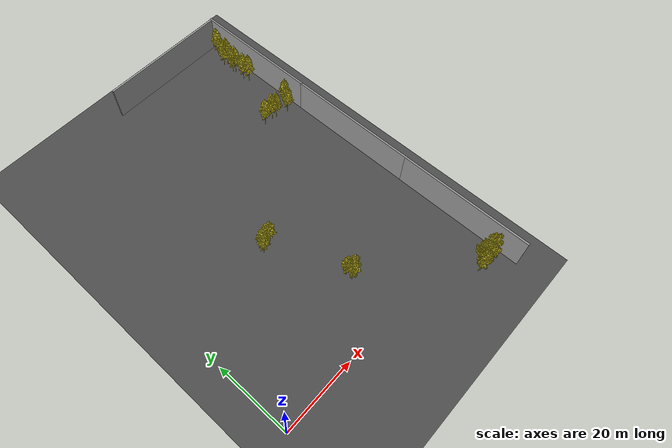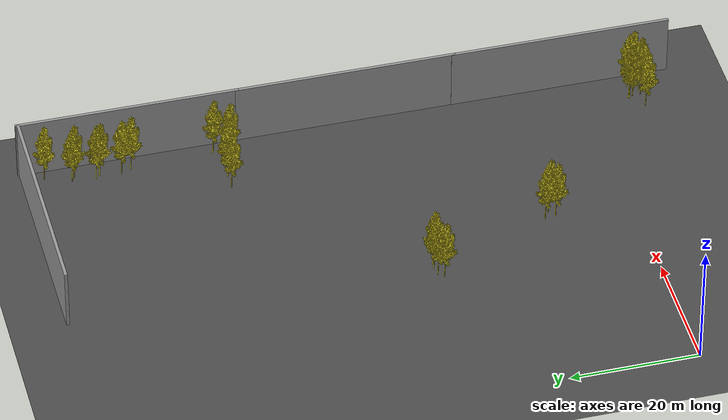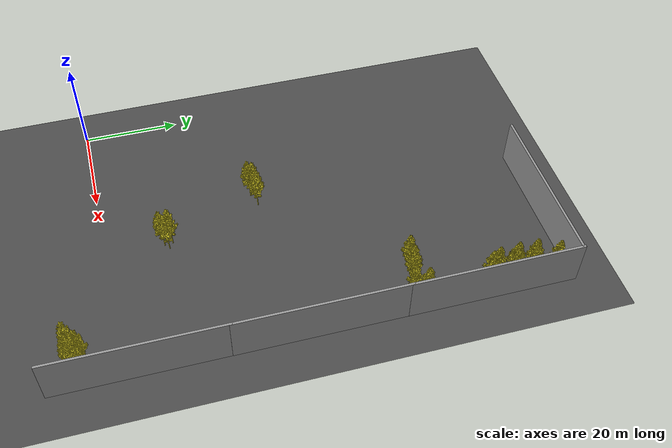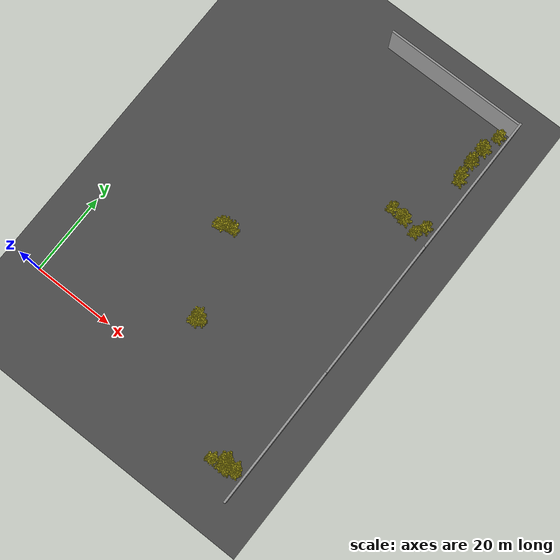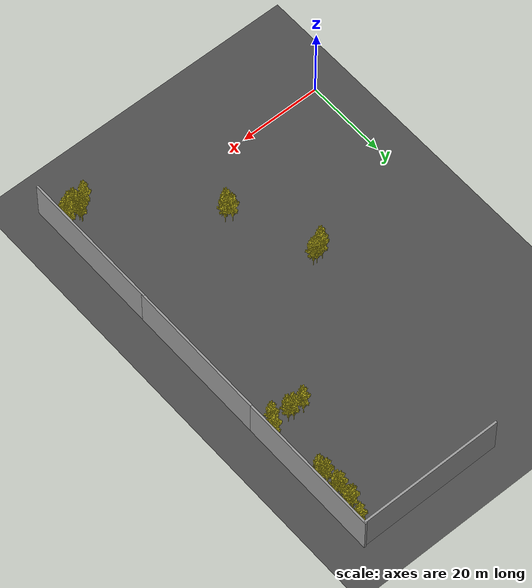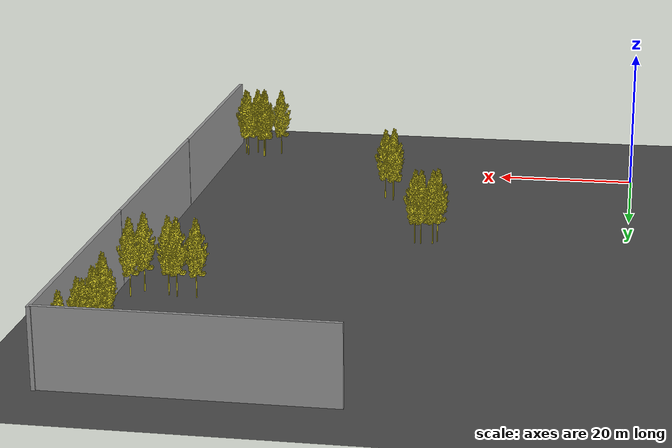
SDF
<sdf version="1.6">
 <world name="default">
  <model name="ground_plane">
   <static>1</static>
   <link name="link">
    <collision name="collision">
     <geometry><plane><normal>0 0 1</normal><size>40000 40000</size></plane></geometry>
     <surface>
      <contact><collide_bitmask>65535</collide_bitmask></contact>
      <friction><ode><mu>100</mu><mu2>50</mu2></ode></friction>
     </surface>
    </collision>
    <visual name="visual">
     <cast_shadows>0</cast_shadows>
     <geometry><plane><normal>0 0 1</normal><size>130 180</size></plane></geometry>
     <material>
      <script><uri>file://media/materials/scripts/gazebo.material</uri><name>Gazebo/Road</name></script>
     </material>
    </visual>
   </link>
  </model>
  <model name="wall1_clone_clone_clone_4">
   <link name="link">
    <enable_wind>1</enable_wind>
    <inertial>
     <mass>1</mass>
     <inertia><ixx>1</ixx><ixy>0</ixy><ixz>0</ixz><iyy>1</iyy><iyz>0</iyz><izz>1</izz></inertia>
    </inertial>
    <visual name="visual">
     <cast_shadows>0</cast_shadows>
     <geometry><box><size>35 0.5 10</size></box></geometry>
     <material>
      <script>
       <uri>model://grey_wall/materials/scripts</uri>
       <uri>model://grey_wall/materials/textures</uri>
       <name>vrc/grey_wall</name>
      </script>
      <shader type="pixel"><normal_map>__default__</normal_map></shader>
      <ambient>1 1 1 1</ambient>
      <diffuse>1 1 1 1</diffuse>
      <specular>0 0 0 1</specular>
      <emissive>0 0 0 1</emissive>
     </material>
    </visual>
    <collision name="collision">
     <geometry><box><size>35 0.5 10</size></box></geometry>
     <surface>
      <friction>
       <ode><mu>1</mu><mu2>1</mu2><fdir1>0 0 0</fdir1><slip1>0</slip1><slip2>0</slip2></ode>
       <torsional>
        <coefficient>1</coefficient>
        <patch_radius>0</patch_radius>
        <surface_radius>0</surface_radius>
        <use_patch_radius>1</use_patch_radius>
        <ode><slip>0</slip></ode>
       </torsional>
      </friction>
      <bounce><restitution_coefficient>0</restitution_coefficient><threshold>1e+06</threshold></bounce>
      <contact>
       <collide_without_contact>0</collide_without_contact>
       <collide_without_contact_bitmask>1</collide_without_contact_bitmask>
       <collide_bitmask>1</collide_bitmask>
       <ode>
        <soft_cfm>0</soft_cfm>
        <soft_erp>0.2</soft_erp>
        <kp>1e+13</kp>
        <kd>1</kd>
        <max_vel>0.01</max_vel>
        <min_depth>0</min_depth>
       </ode>
       <bullet>
        <split_impulse>1</split_impulse>
        <split_impulse_penetration_threshold>-0.01</split_impulse_penetration_threshold>
        <soft_cfm>0</soft_cfm>
        <soft_erp>0.2</soft_erp>
        <kp>1e+13</kp>
        <kd>1</kd>
       </bullet>
      </contact>
     </surface>
    </collision>
   </link>
   <static>1</static>
   <pose>47.1545 89.4112 5 0 -0 0</pose>
  </model>
  <model name="wall1_clone_clone_0_clone_5">
   <link name="link">
    <enable_wind>1</enable_wind>
    <inertial>
     <mass>1</mass>
     <inertia><ixx>1</ixx><ixy>0</ixy><ixz>0</ixz><iyy>1</iyy><iyz>0</iyz><izz>1</izz></inertia>
    </inertial>
    <visual name="visual">
     <cast_shadows>0</cast_shadows>
     <geometry><box><size>35 0.5 10</size></box></geometry>
     <material>
      <script>
       <uri>model://grey_wall/materials/scripts</uri>
       <uri>model://grey_wall/materials/textures</uri>
       <name>vrc/grey_wall</name>
      </script>
      <shader type="pixel"><normal_map>__default__</normal_map></shader>
      <ambient>1 1 1 1</ambient>
      <diffuse>1 1 1 1</diffuse>
      <specular>0 0 0 1</specular>
      <emissive>0 0 0 1</emissive>
     </material>
    </visual>
    <collision name="collision">
     <geometry><box><size>35 0.5 10</size></box></geometry>
     <surface>
      <friction>
       <ode><mu>1</mu><mu2>1</mu2><fdir1>0 0 0</fdir1><slip1>0</slip1><slip2>0</slip2></ode>
       <torsional>
        <coefficient>1</coefficient>
        <patch_radius>0</patch_radius>
        <surface_radius>0</surface_radius>
        <use_patch_radius>1</use_patch_radius>
        <ode><slip>0</slip></ode>
       </torsional>
      </friction>
      <bounce><restitution_coefficient>0</restitution_coefficient><threshold>1e+06</threshold></bounce>
      <contact>
       <collide_without_contact>0</collide_without_contact>
       <collide_without_contact_bitmask>1</collide_without_contact_bitmask>
       <collide_bitmask>1</collide_bitmask>
       <ode>
        <soft_cfm>0</soft_cfm>
        <soft_erp>0.2</soft_erp>
        <kp>1e+13</kp>
        <kd>1</kd>
        <max_vel>0.01</max_vel>
        <min_depth>0</min_depth>
       </ode>
       <bullet>
        <split_impulse>1</split_impulse>
        <split_impulse_penetration_threshold>-0.01</split_impulse_penetration_threshold>
        <soft_cfm>0</soft_cfm>
        <soft_erp>0.2</soft_erp>
        <kp>1e+13</kp>
        <kd>1</kd>
       </bullet>
      </contact>
     </surface>
    </collision>
   </link>
   <static>1</static>
   <pose>64.6101 72.3736 5 0 0 -1.57191</pose>
  </model>
  <model name="wall1_clone_clone_0_clone_5_clone">
   <link name="link">
    <enable_wind>1</enable_wind>
    <inertial>
     <mass>1</mass>
     <inertia><ixx>1</ixx><ixy>0</ixy><ixz>0</ixz><iyy>1</iyy><iyz>0</iyz><izz>1</izz></inertia>
    </inertial>
    <visual name="visual">
     <cast_shadows>0</cast_shadows>
     <geometry><box><size>35 0.5 10</size></box></geometry>
     <material>
      <script>
       <uri>model://grey_wall/materials/scripts</uri>
       <uri>model://grey_wall/materials/textures</uri>
       <name>vrc/grey_wall</name>
      </script>
      <shader type="pixel"><normal_map>__default__</normal_map></shader>
      <ambient>1 1 1 1</ambient>
      <diffuse>1 1 1 1</diffuse>
      <specular>0 0 0 1</specular>
      <emissive>0 0 0 1</emissive>
     </material>
    </visual>
    <collision name="collision">
     <geometry><box><size>35 0.5 10</size></box></geometry>
     <surface>
      <friction>
       <ode><mu>1</mu><mu2>1</mu2><fdir1>0 0 0</fdir1><slip1>0</slip1><slip2>0</slip2></ode>
       <torsional>
        <coefficient>1</coefficient>
        <patch_radius>0</patch_radius>
        <surface_radius>0</surface_radius>
        <use_patch_radius>1</use_patch_radius>
        <ode><slip>0</slip></ode>
       </torsional>
      </friction>
      <bounce><restitution_coefficient>0</restitution_coefficient><threshold>1e+06</threshold></bounce>
      <contact>
       <collide_without_contact>0</collide_without_contact>
       <collide_without_contact_bitmask>1</collide_without_contact_bitmask>
       <collide_bitmask>1</collide_bitmask>
       <ode>
        <soft_cfm>0</soft_cfm>
        <soft_erp>0.2</soft_erp>
        <kp>1e+13</kp>
        <kd>1</kd>
        <max_vel>0.01</max_vel>
        <min_depth>0</min_depth>
       </ode>
       <bullet>
        <split_impulse>1</split_impulse>
        <split_impulse_penetration_threshold>-0.01</split_impulse_penetration_threshold>
        <soft_cfm>0</soft_cfm>
        <soft_erp>0.2</soft_erp>
        <kp>1e+13</kp>
        <kd>1</kd>
       </bullet>
      </contact>
     </surface>
    </collision>
   </link>
   <static>1</static>
   <pose>64.5471 37.9291 5 0 0 -1.57191</pose>
  </model>
  <model name="wall1_clone_clone_0_clone_5_clone_0">
   <link name="link">
    <enable_wind>1</enable_wind>
    <inertial>
     <mass>1</mass>
     <inertia><ixx>1</ixx><ixy>0</ixy><ixz>0</ixz><iyy>1</iyy><iyz>0</iyz><izz>1</izz></inertia>
    </inertial>
    <visual name="visual">
     <cast_shadows>0</cast_shadows>
     <geometry><box><size>35 0.5 10</size></box></geometry>
     <material>
      <script>
       <uri>model://grey_wall/materials/scripts</uri>
       <uri>model://grey_wall/materials/textures</uri>
       <name>vrc/grey_wall</name>
      </script>
      <shader type="pixel"><normal_map>__default__</normal_map></shader>
      <ambient>1 1 1 1</ambient>
      <diffuse>1 1 1 1</diffuse>
      <specular>0 0 0 1</specular>
      <emissive>0 0 0 1</emissive>
     </material>
    </visual>
    <collision name="collision">
     <geometry><box><size>35 0.5 10</size></box></geometry>
     <surface>
      <friction>
       <ode><mu>1</mu><mu2>1</mu2><fdir1>0 0 0</fdir1><slip1>0</slip1><slip2>0</slip2></ode>
       <torsional>
        <coefficient>1</coefficient>
        <patch_radius>0</patch_radius>
        <surface_radius>0</surface_radius>
        <use_patch_radius>1</use_patch_radius>
        <ode><slip>0</slip></ode>
       </torsional>
      </friction>
      <bounce><restitution_coefficient>0</restitution_coefficient><threshold>1e+06</threshold></bounce>
      <contact>
       <collide_without_contact>0</collide_without_contact>
       <collide_without_contact_bitmask>1</collide_without_contact_bitmask>
       <collide_bitmask>1</collide_bitmask>
       <ode>
        <soft_cfm>0</soft_cfm>
        <soft_erp>0.2</soft_erp>
        <kp>1e+13</kp>
        <kd>1</kd>
        <max_vel>0.01</max_vel>
        <min_depth>0</min_depth>
       </ode>
       <bullet>
        <split_impulse>1</split_impulse>
        <split_impulse_penetration_threshold>-0.01</split_impulse_penetration_threshold>
        <soft_cfm>0</soft_cfm>
        <soft_erp>0.2</soft_erp>
        <kp>1e+13</kp>
        <kd>1</kd>
       </bullet>
      </contact>
     </surface>
    </collision>
   </link>
   <static>1</static>
   <pose>64.48 3.53761 5 0 0 -1.57191</pose>
  </model>
  <model name="tree0_clone_clone_clone_1_clone">
   <link name="tree_base">
    <inertial>
     <mass>50</mass>
     <inertia>
      <ixx>6.71748</ixx>
      <ixy>2.148e-05</ixy>
      <ixz>-2.4e-07</ixz>
      <iyy>6.71748</iyy>
      <iyz>-0.171807</iyz>
      <izz>6.71748</izz>
     </inertia>
    </inertial>
    <collision name="tree_base_fixed_joint_lump__collision_collision">
     <geometry>
      <mesh>
       <scale>0.4 0.4 0.6</scale>
       <uri>/home/ana/catkin_ws/src/frontier_exploration_3d/models/tree/meshes/tree_25k_mesh.dae</uri>
      </mesh>
     </geometry>
    </collision>
    <visual name="tree_base_visual">
     <geometry>
      <mesh>
       <scale>0.4 0.4 0.6</scale>
       <uri>/home/ana/catkin_ws/src/frontier_exploration_3d/models/tree/meshes/tree_25k_mesh.dae</uri>
      </mesh>
     </geometry>
     <material>
      <script><name>Gazebo/Yellow</name><uri>file://media/materials/scripts/gazebo.material</uri></script>
     </material>
    </visual>
   </link>
   <joint name="joint_tree_base" type="fixed"><child>tree_base</child><parent>world</parent></joint>
   <static>1</static>
   <pose>61.6795 76.3741 0 0 -0 0</pose>
  </model>
  <model name="tree0_clone_clone_clone_1_clone_0">
   <link name="tree_base">
    <inertial>
     <mass>50</mass>
     <inertia>
      <ixx>6.71748</ixx>
      <ixy>2.148e-05</ixy>
      <ixz>-2.4e-07</ixz>
      <iyy>6.71748</iyy>
      <iyz>-0.171807</iyz>
      <izz>6.71748</izz>
     </inertia>
    </inertial>
    <collision name="tree_base_fixed_joint_lump__collision_collision">
     <geometry>
      <mesh>
       <scale>0.4 0.4 0.6</scale>
       <uri>/home/ana/catkin_ws/src/frontier_exploration_3d/models/tree/meshes/tree_25k_mesh.dae</uri>
      </mesh>
     </geometry>
    </collision>
    <visual name="tree_base_visual">
     <geometry>
      <mesh>
       <scale>0.4 0.4 0.6</scale>
       <uri>/home/ana/catkin_ws/src/frontier_exploration_3d/models/tree/meshes/tree_25k_mesh.dae</uri>
      </mesh>
     </geometry>
     <material>
      <script><name>Gazebo/Yellow</name><uri>file://media/materials/scripts/gazebo.material</uri></script>
     </material>
    </visual>
   </link>
   <joint name="joint_tree_base" type="fixed"><child>tree_base</child><parent>world</parent></joint>
   <static>1</static>
   <pose>61.0806 85.71 0 0 -0 0</pose>
  </model>
  <model name="tree0_clone_clone_clone_1_clone_1">
   <link name="tree_base">
    <inertial>
     <mass>50</mass>
     <inertia>
      <ixx>6.71748</ixx>
      <ixy>2.148e-05</ixy>
      <ixz>-2.4e-07</ixz>
      <iyy>6.71748</iyy>
      <iyz>-0.171807</iyz>
      <izz>6.71748</izz>
     </inertia>
    </inertial>
    <collision name="tree_base_fixed_joint_lump__collision_collision">
     <geometry>
      <mesh>
       <scale>0.4 0.4 0.6</scale>
       <uri>/home/ana/catkin_ws/src/frontier_exploration_3d/models/tree/meshes/tree_25k_mesh.dae</uri>
      </mesh>
     </geometry>
    </collision>
    <visual name="tree_base_visual">
     <geometry>
      <mesh>
       <scale>0.4 0.4 0.6</scale>
       <uri>/home/ana/catkin_ws/src/frontier_exploration_3d/models/tree/meshes/tree_25k_mesh.dae</uri>
      </mesh>
     </geometry>
     <material>
      <script><name>Gazebo/Yellow</name><uri>file://media/materials/scripts/gazebo.material</uri></script>
     </material>
    </visual>
   </link>
   <joint name="joint_tree_base" type="fixed"><child>tree_base</child><parent>world</parent></joint>
   <static>1</static>
   <pose>61.3538 81.3269 0 0 -0 0</pose>
  </model>
  <model name="tree0_clone_clone_clone_1_clone_2">
   <link name="tree_base">
    <inertial>
     <mass>50</mass>
     <inertia>
      <ixx>6.71748</ixx>
      <ixy>2.148e-05</ixy>
      <ixz>-2.4e-07</ixz>
      <iyy>6.71748</iyy>
      <iyz>-0.171807</iyz>
      <izz>6.71748</izz>
     </inertia>
    </inertial>
    <collision name="tree_base_fixed_joint_lump__collision_collision">
     <geometry>
      <mesh>
       <scale>0.4 0.4 0.6</scale>
       <uri>/home/ana/catkin_ws/src/frontier_exploration_3d/models/tree/meshes/tree_25k_mesh.dae</uri>
      </mesh>
     </geometry>
    </collision>
    <visual name="tree_base_visual">
     <geometry>
      <mesh>
       <scale>0.4 0.4 0.6</scale>
       <uri>/home/ana/catkin_ws/src/frontier_exploration_3d/models/tree/meshes/tree_25k_mesh.dae</uri>
      </mesh>
     </geometry>
     <material>
      <script><name>Gazebo/Yellow</name><uri>file://media/materials/scripts/gazebo.material</uri></script>
     </material>
    </visual>
   </link>
   <joint name="joint_tree_base" type="fixed"><child>tree_base</child><parent>world</parent></joint>
   <static>1</static>
   <pose>61.0046 61.0021 0 0 -0 0</pose>
  </model>
  <model name="tree0_clone_clone_clone_1_clone_3">
   <link name="tree_base">
    <inertial>
     <mass>50</mass>
     <inertia>
      <ixx>6.71748</ixx>
      <ixy>2.148e-05</ixy>
      <ixz>-2.4e-07</ixz>
      <iyy>6.71748</iyy>
      <iyz>-0.171807</iyz>
      <izz>6.71748</izz>
     </inertia>
    </inertial>
    <collision name="tree_base_fixed_joint_lump__collision_collision">
     <geometry>
      <mesh>
       <scale>0.4 0.4 0.6</scale>
       <uri>/home/ana/catkin_ws/src/frontier_exploration_3d/models/tree/meshes/tree_25k_mesh.dae</uri>
      </mesh>
     </geometry>
    </collision>
    <visual name="tree_base_visual">
     <geometry>
      <mesh>
       <scale>0.4 0.4 0.6</scale>
       <uri>/home/ana/catkin_ws/src/frontier_exploration_3d/models/tree/meshes/tree_25k_mesh.dae</uri>
      </mesh>
     </geometry>
     <material>
      <script><name>Gazebo/Yellow</name><uri>file://media/materials/scripts/gazebo.material</uri></script>
     </material>
    </visual>
   </link>
   <joint name="joint_tree_base" type="fixed"><child>tree_base</child><parent>world</parent></joint>
   <static>1</static>
   <pose>57.5773 61.8933 0 0 -0 0</pose>
  </model>
  <model name="tree0_clone_clone_clone_1_clone_4">
   <link name="tree_base">
    <inertial>
     <mass>50</mass>
     <inertia>
      <ixx>6.71748</ixx>
      <ixy>2.148e-05</ixy>
      <ixz>-2.4e-07</ixz>
      <iyy>6.71748</iyy>
      <iyz>-0.171807</iyz>
      <izz>6.71748</izz>
     </inertia>
    </inertial>
    <collision name="tree_base_fixed_joint_lump__collision_collision">
     <geometry>
      <mesh>
       <scale>0.4 0.4 0.6</scale>
       <uri>/home/ana/catkin_ws/src/frontier_exploration_3d/models/tree/meshes/tree_25k_mesh.dae</uri>
      </mesh>
     </geometry>
    </collision>
    <visual name="tree_base_visual">
     <geometry>
      <mesh>
       <scale>0.4 0.4 0.6</scale>
       <uri>/home/ana/catkin_ws/src/frontier_exploration_3d/models/tree/meshes/tree_25k_mesh.dae</uri>
      </mesh>
     </geometry>
     <material>
      <script><name>Gazebo/Yellow</name><uri>file://media/materials/scripts/gazebo.material</uri></script>
     </material>
    </visual>
   </link>
   <joint name="joint_tree_base" type="fixed"><child>tree_base</child><parent>world</parent></joint>
   <static>1</static>
   <pose>53.8554 62.3117 0 0 -0 0</pose>
  </model>
  <model name="tree0_clone_clone_clone_1_clone_4_clone_0">
   <link name="tree_base">
    <inertial>
     <mass>50</mass>
     <inertia>
      <ixx>6.71748</ixx>
      <ixy>2.148e-05</ixy>
      <ixz>-2.4e-07</ixz>
      <iyy>6.71748</iyy>
      <iyz>-0.171807</iyz>
      <izz>6.71748</izz>
     </inertia>
    </inertial>
    <collision name="tree_base_fixed_joint_lump__collision_collision">
     <geometry>
      <mesh>
       <scale>0.4 0.4 0.6</scale>
       <uri>/home/ana/catkin_ws/src/frontier_exploration_3d/models/tree/meshes/tree_25k_mesh.dae</uri>
      </mesh>
     </geometry>
    </collision>
    <visual name="tree_base_visual">
     <geometry>
      <mesh>
       <scale>0.4 0.4 0.6</scale>
       <uri>/home/ana/catkin_ws/src/frontier_exploration_3d/models/tree/meshes/tree_25k_mesh.dae</uri>
      </mesh>
     </geometry>
     <material>
      <script><name>Gazebo/Yellow</name><uri>file://media/materials/scripts/gazebo.material</uri></script>
     </material>
    </visual>
   </link>
   <joint name="joint_tree_base" type="fixed"><child>tree_base</child><parent>world</parent></joint>
   <static>1</static>
   <pose>59.3499 -4.55438 0 0 -0 0</pose>
  </model>
  <model name="tree0_clone_clone_clone_1_clone_4_clone_1">
   <link name="tree_base">
    <inertial>
     <mass>50</mass>
     <inertia>
      <ixx>6.71748</ixx>
      <ixy>2.148e-05</ixy>
      <ixz>-2.4e-07</ixz>
      <iyy>6.71748</iyy>
      <iyz>-0.171807</iyz>
      <izz>6.71748</izz>
     </inertia>
    </inertial>
    <collision name="tree_base_fixed_joint_lump__collision_collision">
     <geometry>
      <mesh>
       <scale>0.4 0.4 0.6</scale>
       <uri>/home/ana/catkin_ws/src/frontier_exploration_3d/models/tree/meshes/tree_25k_mesh.dae</uri>
      </mesh>
     </geometry>
    </collision>
    <visual name="tree_base_visual">
     <geometry>
      <mesh>
       <scale>0.4 0.4 0.6</scale>
       <uri>/home/ana/catkin_ws/src/frontier_exploration_3d/models/tree/meshes/tree_25k_mesh.dae</uri>
      </mesh>
     </geometry>
     <material>
      <script><name>Gazebo/Yellow</name><uri>file://media/materials/scripts/gazebo.material</uri></script>
     </material>
    </visual>
   </link>
   <joint name="joint_tree_base" type="fixed"><child>tree_base</child><parent>world</parent></joint>
   <static>1</static>
   <pose>56.6016 -4.57491 0 0 -0 0</pose>
  </model>
  <model name="tree0_clone_clone_clone_1_clone_4_clone_2">
   <link name="tree_base">
    <inertial>
     <mass>50</mass>
     <inertia>
      <ixx>6.71748</ixx>
      <ixy>2.148e-05</ixy>
      <ixz>-2.4e-07</ixz>
      <iyy>6.71748</iyy>
      <iyz>-0.171807</iyz>
      <izz>6.71748</izz>
     </inertia>
    </inertial>
    <collision name="tree_base_fixed_joint_lump__collision_collision">
     <geometry>
      <mesh>
       <scale>0.4 0.4 0.6</scale>
       <uri>/home/ana/catkin_ws/src/frontier_exploration_3d/models/tree/meshes/tree_25k_mesh.dae</uri>
      </mesh>
     </geometry>
    </collision>
    <visual name="tree_base_visual">
     <geometry>
      <mesh>
       <scale>0.4 0.4 0.6</scale>
       <uri>/home/ana/catkin_ws/src/frontier_exploration_3d/models/tree/meshes/tree_25k_mesh.dae</uri>
      </mesh>
     </geometry>
     <material>
      <script><name>Gazebo/Yellow</name><uri>file://media/materials/scripts/gazebo.material</uri></script>
     </material>
    </visual>
   </link>
   <joint name="joint_tree_base" type="fixed"><child>tree_base</child><parent>world</parent></joint>
   <static>1</static>
   <pose>58.9183 -2.67417 0 0 -0 0</pose>
  </model>
  <model name="tree0_clone_clone_clone_1_clone_4_clone_3">
   <link name="tree_base">
    <inertial>
     <mass>50</mass>
     <inertia>
      <ixx>6.71748</ixx>
      <ixy>2.148e-05</ixy>
      <ixz>-2.4e-07</ixz>
      <iyy>6.71748</iyy>
      <iyz>-0.171807</iyz>
      <izz>6.71748</izz>
     </inertia>
    </inertial>
    <collision name="tree_base_fixed_joint_lump__collision_collision">
     <geometry>
      <mesh>
       <scale>0.4 0.4 0.6</scale>
       <uri>/home/ana/catkin_ws/src/frontier_exploration_3d/models/tree/meshes/tree_25k_mesh.dae</uri>
      </mesh>
     </geometry>
    </collision>
    <visual name="tree_base_visual">
     <geometry>
      <mesh>
       <scale>0.4 0.4 0.6</scale>
       <uri>/home/ana/catkin_ws/src/frontier_exploration_3d/models/tree/meshes/tree_25k_mesh.dae</uri>
      </mesh>
     </geometry>
     <material>
      <script><name>Gazebo/Yellow</name><uri>file://media/materials/scripts/gazebo.material</uri></script>
     </material>
    </visual>
   </link>
   <joint name="joint_tree_base" type="fixed"><child>tree_base</child><parent>world</parent></joint>
   <static>1</static>
   <pose>36.314 16.8724 0 0 -0 0</pose>
  </model>
  <model name="tree0_clone_clone_clone_1_clone_4_clone_4">
   <link name="tree_base">
    <inertial>
     <mass>50</mass>
     <inertia>
      <ixx>6.71748</ixx>
      <ixy>2.148e-05</ixy>
      <ixz>-2.4e-07</ixz>
      <iyy>6.71748</iyy>
      <iyz>-0.171807</iyz>
      <izz>6.71748</izz>
     </inertia>
    </inertial>
    <collision name="tree_base_fixed_joint_lump__collision_collision">
     <geometry>
      <mesh>
       <scale>0.4 0.4 0.6</scale>
       <uri>/home/ana/catkin_ws/src/frontier_exploration_3d/models/tree/meshes/tree_25k_mesh.dae</uri>
      </mesh>
     </geometry>
    </collision>
    <visual name="tree_base_visual">
     <geometry>
      <mesh>
       <scale>0.4 0.4 0.6</scale>
       <uri>/home/ana/catkin_ws/src/frontier_exploration_3d/models/tree/meshes/tree_25k_mesh.dae</uri>
      </mesh>
     </geometry>
     <material>
      <script><name>Gazebo/Yellow</name><uri>file://media/materials/scripts/gazebo.material</uri></script>
     </material>
    </visual>
   </link>
   <joint name="joint_tree_base" type="fixed"><child>tree_base</child><parent>world</parent></joint>
   <static>1</static>
   <pose>29.2571 36.919 0 0 -0 0</pose>
  </model>
  <model name="tree0_clone_clone_clone_1_clone_4_clone_3_clone">
   <link name="tree_base">
    <inertial>
     <mass>50</mass>
     <inertia>
      <ixx>6.71748</ixx>
      <ixy>2.148e-05</ixy>
      <ixz>-2.4e-07</ixz>
      <iyy>6.71748</iyy>
      <iyz>-0.171807</iyz>
      <izz>6.71748</izz>
     </inertia>
    </inertial>
    <collision name="tree_base_fixed_joint_lump__collision_collision">
     <geometry>
      <mesh>
       <scale>0.4 0.4 0.6</scale>
       <uri>/home/ana/catkin_ws/src/frontier_exploration_3d/models/tree/meshes/tree_25k_mesh.dae</uri>
      </mesh>
     </geometry>
    </collision>
    <visual name="tree_base_visual">
     <geometry>
      <mesh>
       <scale>0.4 0.4 0.6</scale>
       <uri>/home/ana/catkin_ws/src/frontier_exploration_3d/models/tree/meshes/tree_25k_mesh.dae</uri>
      </mesh>
     </geometry>
     <material>
      <script><name>Gazebo/Yellow</name><uri>file://media/materials/scripts/gazebo.material</uri></script>
     </material>
    </visual>
   </link>
   <joint name="joint_tree_base" type="fixed"><child>tree_base</child><parent>world</parent></joint>
   <static>1</static>
   <pose>35.0095 17.7314 0 0 -0 0</pose>
  </model>
  <model name="tree0_clone_clone_clone_1_clone_4_clone_3_clone_0">
   <link name="tree_base">
    <inertial>
     <mass>50</mass>
     <inertia>
      <ixx>6.71748</ixx>
      <ixy>2.148e-05</ixy>
      <ixz>-2.4e-07</ixz>
      <iyy>6.71748</iyy>
      <iyz>-0.171807</iyz>
      <izz>6.71748</izz>
     </inertia>
    </inertial>
    <collision name="tree_base_fixed_joint_lump__collision_collision">
     <geometry>
      <mesh>
       <scale>0.4 0.4 0.6</scale>
       <uri>/home/ana/catkin_ws/src/frontier_exploration_3d/models/tree/meshes/tree_25k_mesh.dae</uri>
      </mesh>
     </geometry>
    </collision>
    <visual name="tree_base_visual">
     <geometry>
      <mesh>
       <scale>0.4 0.4 0.6</scale>
       <uri>/home/ana/catkin_ws/src/frontier_exploration_3d/models/tree/meshes/tree_25k_mesh.dae</uri>
      </mesh>
     </geometry>
     <material>
      <script><name>Gazebo/Yellow</name><uri>file://media/materials/scripts/gazebo.material</uri></script>
     </material>
    </visual>
   </link>
   <joint name="joint_tree_base" type="fixed"><child>tree_base</child><parent>world</parent></joint>
   <static>1</static>
   <pose>35.1617 16.0304 0 0 -0 0</pose>
  </model>
  <model name="tree0_clone_clone_clone_1_clone_4_clone_3_clone_1">
   <link name="tree_base">
    <inertial>
     <mass>50</mass>
     <inertia>
      <ixx>6.71748</ixx>
      <ixy>2.148e-05</ixy>
      <ixz>-2.4e-07</ixz>
      <iyy>6.71748</iyy>
      <iyz>-0.171807</iyz>
      <izz>6.71748</izz>
     </inertia>
    </inertial>
    <collision name="tree_base_fixed_joint_lump__collision_collision">
     <geometry>
      <mesh>
       <scale>0.4 0.4 0.6</scale>
       <uri>/home/ana/catkin_ws/src/frontier_exploration_3d/models/tree/meshes/tree_25k_mesh.dae</uri>
      </mesh>
     </geometry>
    </collision>
    <visual name="tree_base_visual">
     <geometry>
      <mesh>
       <scale>0.4 0.4 0.6</scale>
       <uri>/home/ana/catkin_ws/src/frontier_exploration_3d/models/tree/meshes/tree_25k_mesh.dae</uri>
      </mesh>
     </geometry>
     <material>
      <script><name>Gazebo/Yellow</name><uri>file://media/materials/scripts/gazebo.material</uri></script>
     </material>
    </visual>
   </link>
   <joint name="joint_tree_base" type="fixed"><child>tree_base</child><parent>world</parent></joint>
   <static>1</static>
   <pose>28.3903 37.0069 0 0 -0 0</pose>
  </model>
  <model name="tree0_clone_clone_clone_1_clone_4_clone_3_clone_2">
   <link name="tree_base">
    <inertial>
     <mass>50</mass>
     <inertia>
      <ixx>6.71748</ixx>
      <ixy>2.148e-05</ixy>
      <ixz>-2.4e-07</ixz>
      <iyy>6.71748</iyy>
      <iyz>-0.171807</iyz>
      <izz>6.71748</izz>
     </inertia>
    </inertial>
    <collision name="tree_base_fixed_joint_lump__collision_collision">
     <geometry>
      <mesh>
       <scale>0.4 0.4 0.6</scale>
       <uri>/home/ana/catkin_ws/src/frontier_exploration_3d/models/tree/meshes/tree_25k_mesh.dae</uri>
      </mesh>
     </geometry>
    </collision>
    <visual name="tree_base_visual">
     <geometry>
      <mesh>
       <scale>0.4 0.4 0.6</scale>
       <uri>/home/ana/catkin_ws/src/frontier_exploration_3d/models/tree/meshes/tree_25k_mesh.dae</uri>
      </mesh>
     </geometry>
     <material>
      <script><name>Gazebo/Yellow</name><uri>file://media/materials/scripts/gazebo.material</uri></script>
     </material>
    </visual>
   </link>
   <joint name="joint_tree_base" type="fixed"><child>tree_base</child><parent>world</parent></joint>
   <static>1</static>
   <pose>26.772 36.8202 0 0 -0 0</pose>
  </model>
  <model name="tree0_clone_clone_clone_1_clone_4_clone_3_clone_3">
   <link name="tree_base">
    <inertial>
     <mass>50</mass>
     <inertia>
      <ixx>6.71748</ixx>
      <ixy>2.148e-05</ixy>
      <ixz>-2.4e-07</ixz>
      <iyy>6.71748</iyy>
      <iyz>-0.171807</iyz>
      <izz>6.71748</izz>
     </inertia>
    </inertial>
    <collision name="tree_base_fixed_joint_lump__collision_collision">
     <geometry>
      <mesh>
       <scale>0.4 0.4 0.6</scale>
       <uri>/home/ana/catkin_ws/src/frontier_exploration_3d/models/tree/meshes/tree_25k_mesh.dae</uri>
      </mesh>
     </geometry>
    </collision>
    <visual name="tree_base_visual">
     <geometry>
      <mesh>
       <scale>0.4 0.4 0.6</scale>
       <uri>/home/ana/catkin_ws/src/frontier_exploration_3d/models/tree/meshes/tree_25k_mesh.dae</uri>
      </mesh>
     </geometry>
     <material>
      <script><name>Gazebo/Yellow</name><uri>file://media/materials/scripts/gazebo.material</uri></script>
     </material>
    </visual>
   </link>
   <joint name="joint_tree_base" type="fixed"><child>tree_base</child><parent>world</parent></joint>
   <static>1</static>
   <pose>26.2164 35.9188 0 0 -0 0</pose>
  </model>
  <model name="tree0_clone_clone_clone_1_clone_4_clone_3_clone_5">
   <link name="tree_base">
    <inertial>
     <mass>50</mass>
     <inertia>
      <ixx>6.71748</ixx>
      <ixy>2.148e-05</ixy>
      <ixz>-2.4e-07</ixz>
      <iyy>6.71748</iyy>
      <iyz>-0.171807</iyz>
      <izz>6.71748</izz>
     </inertia>
    </inertial>
    <collision name="tree_base_fixed_joint_lump__collision_collision">
     <geometry>
      <mesh>
       <scale>0.4 0.4 0.6</scale>
       <uri>/home/ana/catkin_ws/src/frontier_exploration_3d/models/tree/meshes/tree_25k_mesh.dae</uri>
      </mesh>
     </geometry>
    </collision>
    <visual name="tree_base_visual">
     <geometry>
      <mesh>
       <scale>0.4 0.4 0.6</scale>
       <uri>/home/ana/catkin_ws/src/frontier_exploration_3d/models/tree/meshes/tree_25k_mesh.dae</uri>
      </mesh>
     </geometry>
     <material>
      <script><name>Gazebo/Yellow</name><uri>file://media/materials/scripts/gazebo.material</uri></script>
     </material>
    </visual>
   </link>
   <joint name="joint_tree_base" type="fixed"><child>tree_base</child><parent>world</parent></joint>
   <static>1</static>
   <pose>59.1115 -2.58965 0 0 -0 0</pose>
  </model>
  <model name="tree0_clone_clone_clone_1_clone_4_clone_3_clone_6">
   <link name="tree_base">
    <inertial>
     <mass>50</mass>
     <inertia>
      <ixx>6.71748</ixx>
      <ixy>2.148e-05</ixy>
      <ixz>-2.4e-07</ixz>
      <iyy>6.71748</iyy>
      <iyz>-0.171807</iyz>
      <izz>6.71748</izz>
     </inertia>
    </inertial>
    <collision name="tree_base_fixed_joint_lump__collision_collision">
     <geometry>
      <mesh>
       <scale>0.4 0.4 0.6</scale>
       <uri>/home/ana/catkin_ws/src/frontier_exploration_3d/models/tree/meshes/tree_25k_mesh.dae</uri>
      </mesh>
     </geometry>
    </collision>
    <visual name="tree_base_visual">
     <geometry>
      <mesh>
       <scale>0.4 0.4 0.6</scale>
       <uri>/home/ana/catkin_ws/src/frontier_exploration_3d/models/tree/meshes/tree_25k_mesh.dae</uri>
      </mesh>
     </geometry>
     <material>
      <script><name>Gazebo/Yellow</name><uri>file://media/materials/scripts/gazebo.material</uri></script>
     </material>
    </visual>
   </link>
   <joint name="joint_tree_base" type="fixed"><child>tree_base</child><parent>world</parent></joint>
   <static>1</static>
   <pose>59.2484 -3.23688 0 0 -0 0</pose>
  </model>
  <model name="tree0_clone_clone_clone_1_clone_4_clone_3_clone_7">
   <link name="tree_base">
    <inertial>
     <mass>50</mass>
     <inertia>
      <ixx>6.71748</ixx>
      <ixy>2.148e-05</ixy>
      <ixz>-2.4e-07</ixz>
      <iyy>6.71748</iyy>
      <iyz>-0.171807</iyz>
      <izz>6.71748</izz>
     </inertia>
    </inertial>
    <collision name="tree_base_fixed_joint_lump__collision_collision">
     <geometry>
      <mesh>
       <scale>0.4 0.4 0.6</scale>
       <uri>/home/ana/catkin_ws/src/frontier_exploration_3d/models/tree/meshes/tree_25k_mesh.dae</uri>
      </mesh>
     </geometry>
    </collision>
    <visual name="tree_base_visual">
     <geometry>
      <mesh>
       <scale>0.4 0.4 0.6</scale>
       <uri>/home/ana/catkin_ws/src/frontier_exploration_3d/models/tree/meshes/tree_25k_mesh.dae</uri>
      </mesh>
     </geometry>
     <material>
      <script><name>Gazebo/Yellow</name><uri>file://media/materials/scripts/gazebo.material</uri></script>
     </material>
    </visual>
   </link>
   <joint name="joint_tree_base" type="fixed"><child>tree_base</child><parent>world</parent></joint>
   <static>1</static>
   <pose>61.7704 -3.03917 0 0 -0 0</pose>
  </model>
  <model name="tree0_clone_clone_clone_1_clone_4_clone_3_clone_8">
   <link name="tree_base">
    <inertial>
     <mass>50</mass>
     <inertia>
      <ixx>6.71748</ixx>
      <ixy>2.148e-05</ixy>
      <ixz>-2.4e-07</ixz>
      <iyy>6.71748</iyy>
      <iyz>-0.171807</iyz>
      <izz>6.71748</izz>
     </inertia>
    </inertial>
    <collision name="tree_base_fixed_joint_lump__collision_collision">
     <geometry>
      <mesh>
       <scale>0.4 0.4 0.6</scale>
       <uri>/home/ana/catkin_ws/src/frontier_exploration_3d/models/tree/meshes/tree_25k_mesh.dae</uri>
      </mesh>
     </geometry>
    </collision>
    <visual name="tree_base_visual">
     <geometry>
      <mesh>
       <scale>0.4 0.4 0.6</scale>
       <uri>/home/ana/catkin_ws/src/frontier_exploration_3d/models/tree/meshes/tree_25k_mesh.dae</uri>
      </mesh>
     </geometry>
     <material>
      <script><name>Gazebo/Yellow</name><uri>file://media/materials/scripts/gazebo.material</uri></script>
     </material>
    </visual>
   </link>
   <joint name="joint_tree_base" type="fixed"><child>tree_base</child><parent>world</parent></joint>
   <static>1</static>
   <pose>62.3013 -3.91686 0 0 -0 0</pose>
  </model>
  <model name="tree0_clone_clone_clone_1_clone_4_clone_3_clone_9">
   <link name="tree_base">
    <inertial>
     <mass>50</mass>
     <inertia>
      <ixx>6.71748</ixx>
      <ixy>2.148e-05</ixy>
      <ixz>-2.4e-07</ixz>
      <iyy>6.71748</iyy>
      <iyz>-0.171807</iyz>
      <izz>6.71748</izz>
     </inertia>
    </inertial>
    <collision name="tree_base_fixed_joint_lump__collision_collision">
     <geometry>
      <mesh>
       <scale>0.4 0.4 0.6</scale>
       <uri>/home/ana/catkin_ws/src/frontier_exploration_3d/models/tree/meshes/tree_25k_mesh.dae</uri>
      </mesh>
     </geometry>
    </collision>
    <visual name="tree_base_visual">
     <geometry>
      <mesh>
       <scale>0.4 0.4 0.6</scale>
       <uri>/home/ana/catkin_ws/src/frontier_exploration_3d/models/tree/meshes/tree_25k_mesh.dae</uri>
      </mesh>
     </geometry>
     <material>
      <script><name>Gazebo/Yellow</name><uri>file://media/materials/scripts/gazebo.material</uri></script>
     </material>
    </visual>
   </link>
   <joint name="joint_tree_base" type="fixed"><child>tree_base</child><parent>world</parent></joint>
   <static>1</static>
   <pose>60.5038 -4.63157 0 0 -0 0</pose>
  </model>
  <model name="tree0_clone_clone_clone_23_clone_19">
   <link name="tree_base">
    <inertial>
     <mass>50</mass>
     <inertia>
      <ixx>6.71748</ixx>
      <ixy>2.148e-05</ixy>
      <ixz>-2.4e-07</ixz>
      <iyy>6.71748</iyy>
      <iyz>-0.171807</iyz>
      <izz>6.71748</izz>
     </inertia>
    </inertial>
    <collision name="tree_base_fixed_joint_lump__collision_collision">
     <geometry>
      <mesh>
       <scale>0.4 0.4 0.6</scale>
       <uri>/home/ana/catkin_ws/src/frontier_exploration_3d/models/tree/meshes/tree_25k_mesh.dae</uri>
      </mesh>
     </geometry>
    </collision>
    <visual name="tree_base_visual">
     <geometry>
      <mesh>
       <scale>0.4 0.4 0.6</scale>
       <uri>/home/ana/catkin_ws/src/frontier_exploration_3d/models/tree/meshes/tree_25k_mesh.dae</uri>
      </mesh>
     </geometry>
     <material>
      <script><name>Gazebo/Yellow</name><uri>file://media/materials/scripts/gazebo.material</uri></script>
     </material>
    </visual>
   </link>
   <joint name="joint_tree_base" type="fixed"><child>tree_base</child><parent>world</parent></joint>
   <static>1</static>
   <pose>56.4192 62.2777 0 0 -0 0</pose>
  </model>
  <model name="tree0_clone_clone_clone_23_clone_20">
   <link name="tree_base">
    <inertial>
     <mass>50</mass>
     <inertia>
      <ixx>6.71748</ixx>
      <ixy>2.148e-05</ixy>
      <ixz>-2.4e-07</ixz>
      <iyy>6.71748</iyy>
      <iyz>-0.171807</iyz>
      <izz>6.71748</izz>
     </inertia>
    </inertial>
    <collision name="tree_base_fixed_joint_lump__collision_collision">
     <geometry>
      <mesh>
       <scale>0.4 0.4 0.6</scale>
       <uri>/home/ana/catkin_ws/src/frontier_exploration_3d/models/tree/meshes/tree_25k_mesh.dae</uri>
      </mesh>
     </geometry>
    </collision>
    <visual name="tree_base_visual">
     <geometry>
      <mesh>
       <scale>0.4 0.4 0.6</scale>
       <uri>/home/ana/catkin_ws/src/frontier_exploration_3d/models/tree/meshes/tree_25k_mesh.dae</uri>
      </mesh>
     </geometry>
     <material>
      <script><name>Gazebo/Yellow</name><uri>file://media/materials/scripts/gazebo.material</uri></script>
     </material>
    </visual>
   </link>
   <joint name="joint_tree_base" type="fixed"><child>tree_base</child><parent>world</parent></joint>
   <static>1</static>
   <pose>62.2476 63.2834 0 0 -0 0</pose>
  </model>
  <model name="tree0_clone_clone_clone_23_clone_21">
   <link name="tree_base">
    <inertial>
     <mass>50</mass>
     <inertia>
      <ixx>6.71748</ixx>
      <ixy>2.148e-05</ixy>
      <ixz>-2.4e-07</ixz>
      <iyy>6.71748</iyy>
      <iyz>-0.171807</iyz>
      <izz>6.71748</izz>
     </inertia>
    </inertial>
    <collision name="tree_base_fixed_joint_lump__collision_collision">
     <geometry>
      <mesh>
       <scale>0.4 0.4 0.6</scale>
       <uri>/home/ana/catkin_ws/src/frontier_exploration_3d/models/tree/meshes/tree_25k_mesh.dae</uri>
      </mesh>
     </geometry>
    </collision>
    <visual name="tree_base_visual">
     <geometry>
      <mesh>
       <scale>0.4 0.4 0.6</scale>
       <uri>/home/ana/catkin_ws/src/frontier_exploration_3d/models/tree/meshes/tree_25k_mesh.dae</uri>
      </mesh>
     </geometry>
     <material>
      <script><name>Gazebo/Yellow</name><uri>file://media/materials/scripts/gazebo.material</uri></script>
     </material>
    </visual>
   </link>
   <joint name="joint_tree_base" type="fixed"><child>tree_base</child><parent>world</parent></joint>
   <static>1</static>
   <pose>61.1147 77.9659 0 0 -0 0</pose>
  </model>
  <model name="tree0_clone_clone_clone_23_clone_22">
   <link name="tree_base">
    <inertial>
     <mass>50</mass>
     <inertia>
      <ixx>6.71748</ixx>
      <ixy>2.148e-05</ixy>
      <ixz>-2.4e-07</ixz>
      <iyy>6.71748</iyy>
      <iyz>-0.171807</iyz>
      <izz>6.71748</izz>
     </inertia>
    </inertial>
    <collision name="tree_base_fixed_joint_lump__collision_collision">
     <geometry>
      <mesh>
       <scale>0.4 0.4 0.6</scale>
       <uri>/home/ana/catkin_ws/src/frontier_exploration_3d/models/tree/meshes/tree_25k_mesh.dae</uri>
      </mesh>
     </geometry>
    </collision>
    <visual name="tree_base_visual">
     <geometry>
      <mesh>
       <scale>0.4 0.4 0.6</scale>
       <uri>/home/ana/catkin_ws/src/frontier_exploration_3d/models/tree/meshes/tree_25k_mesh.dae</uri>
      </mesh>
     </geometry>
     <material>
      <script><name>Gazebo/Yellow</name><uri>file://media/materials/scripts/gazebo.material</uri></script>
     </material>
    </visual>
   </link>
   <joint name="joint_tree_base" type="fixed"><child>tree_base</child><parent>world</parent></joint>
   <static>1</static>
   <pose>60.9172 81.9769 0 0 -0 0</pose>
  </model>
  <model name="tree0_clone_clone_clone_23_clone_23">
   <link name="tree_base">
    <inertial>
     <mass>50</mass>
     <inertia>
      <ixx>6.71748</ixx>
      <ixy>2.148e-05</ixy>
      <ixz>-2.4e-07</ixz>
      <iyy>6.71748</iyy>
      <iyz>-0.171807</iyz>
      <izz>6.71748</izz>
     </inertia>
    </inertial>
    <collision name="tree_base_fixed_joint_lump__collision_collision">
     <geometry>
      <mesh>
       <scale>0.4 0.4 0.6</scale>
       <uri>/home/ana/catkin_ws/src/frontier_exploration_3d/models/tree/meshes/tree_25k_mesh.dae</uri>
      </mesh>
     </geometry>
    </collision>
    <visual name="tree_base_visual">
     <geometry>
      <mesh>
       <scale>0.4 0.4 0.6</scale>
       <uri>/home/ana/catkin_ws/src/frontier_exploration_3d/models/tree/meshes/tree_25k_mesh.dae</uri>
      </mesh>
     </geometry>
     <material>
      <script><name>Gazebo/Yellow</name><uri>file://media/materials/scripts/gazebo.material</uri></script>
     </material>
    </visual>
   </link>
   <joint name="joint_tree_base" type="fixed"><child>tree_base</child><parent>world</parent></joint>
   <static>1</static>
   <pose>62.6344 89.8001 0 0 -0 0</pose>
  </model>
  <model name="tree0_clone_clone_clone_23_clone_24">
   <link name="tree_base">
    <inertial>
     <mass>50</mass>
     <inertia>
      <ixx>6.71748</ixx>
      <ixy>2.148e-05</ixy>
      <ixz>-2.4e-07</ixz>
      <iyy>6.71748</iyy>
      <iyz>-0.171807</iyz>
      <izz>6.71748</izz>
     </inertia>
    </inertial>
    <collision name="tree_base_fixed_joint_lump__collision_collision">
     <geometry>
      <mesh>
       <scale>0.4 0.4 0.6</scale>
       <uri>/home/ana/catkin_ws/src/frontier_exploration_3d/models/tree/meshes/tree_25k_mesh.dae</uri>
      </mesh>
     </geometry>
    </collision>
    <visual name="tree_base_visual">
     <geometry>
      <mesh>
       <scale>0.4 0.4 0.6</scale>
       <uri>/home/ana/catkin_ws/src/frontier_exploration_3d/models/tree/meshes/tree_25k_mesh.dae</uri>
      </mesh>
     </geometry>
     <material>
      <script><name>Gazebo/Yellow</name><uri>file://media/materials/scripts/gazebo.material</uri></script>
     </material>
    </visual>
   </link>
   <joint name="joint_tree_base" type="fixed"><child>tree_base</child><parent>world</parent></joint>
   <static>1</static>
   <pose>61.893 85.2693 0 0 -0 0</pose>
  </model>
 </world>
</sdf>
